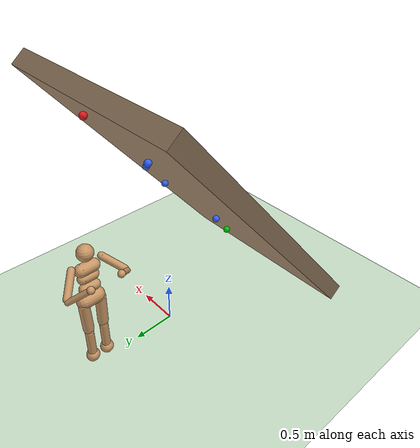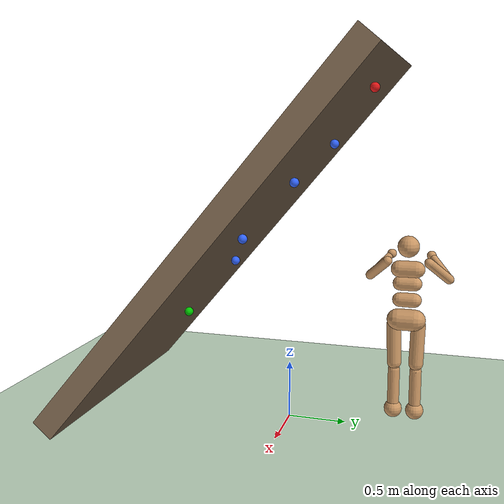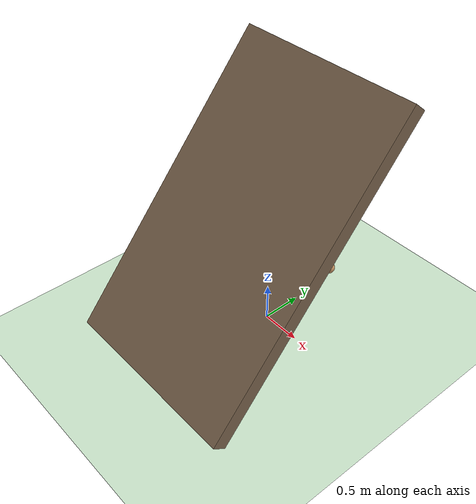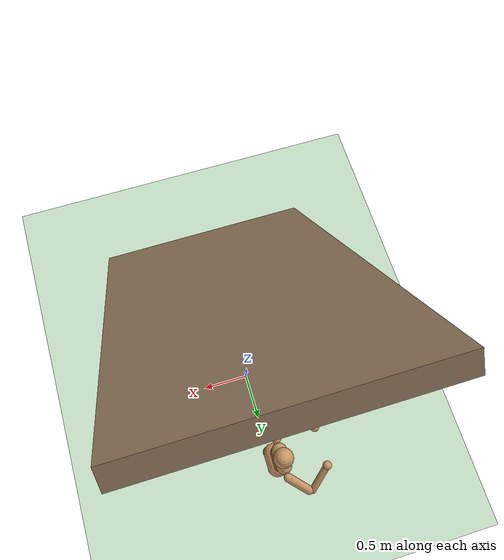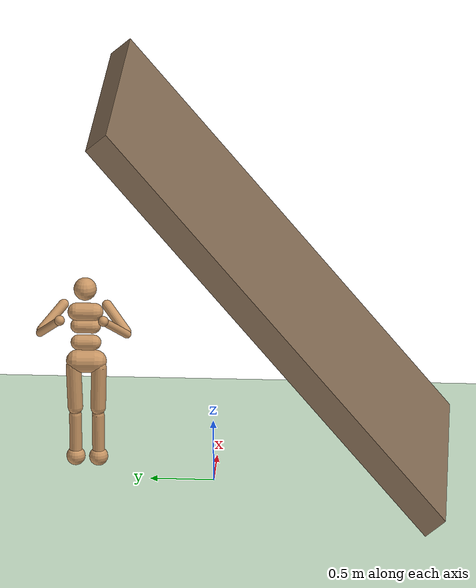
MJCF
<mujoco model="moonboard_scene">
  <compiler angle="degree" inertiafromgeom="true" />
  <option integrator="RK4" iterations="50" solver="PGS" timestep="0.003">

    </option>
  <size nkey="5" nuser_geom="1" />
  <visual>
    <map fogend="5" fogstart="3" />
  </visual>
  <default>
    <joint armature="1" damping="1" limited="true" />
    <geom conaffinity="1" condim="1" contype="1" margin="0.001" material="geom" rgba="0.8 0.6 .4 1" />
    <motor ctrllimited="true" ctrlrange="-.4 .4" />
  </default>
  <asset>
    <texture builtin="gradient" height="100" rgb1=".4 .5 .6" rgb2="0 0 0" type="skybox" width="100" />
    <texture builtin="flat" height="1278" mark="cross" markrgb="1 1 1" name="texgeom" random="0.01" rgb1="0.8 0.6 0.4" rgb2="0.8 0.6 0.4" type="cube" width="127" />
    <texture builtin="checker" height="100" name="texplane" rgb1="0 0 0" rgb2="0.8 0.8 0.8" type="2d" width="100" />
    <material name="MatPlane" reflectance="0.5" shininess="1" specular="1" texrepeat="60 60" texture="texplane" />
    <material name="geom" texture="texgeom" texuniform="true" />
  </asset>
  <worldbody>
    <light name="main_light" diffuse=".9 .9 .9" pos="0 -1 5" dir="0 0.2 -1" directional="true" />
    <geom name="floor" type="plane" condim="3" friction="1 .1 .1" material="MatPlane" pos="0 0 0" size="20 20 0.125" rgba="0.8 0.9 0.8 1" />
    <geom name="moonboard_wall" type="box" pos="0.0000 -0.4839 1.6666" euler="-40.0 0 0" size="1.2 0.1 2.0" rgba="0.55 0.45 0.35 1" contype="1" conaffinity="1" />
    <body name="hold_20153_h001" pos="0.0000 -0.9551 0.8871">
      <geom type="sphere" size="0.04" rgba="0 0.8 0 1" contype="0" conaffinity="0" name="geom_20153_h001" />
    </body>
    <body name="hold_20153_h002" pos="-0.2000 -0.5695 1.3468">
      <geom type="sphere" size="0.04" rgba="0.2 0.4 1 1" contype="0" conaffinity="0" name="geom_20153_h002" />
    </body>
    <body name="hold_20153_h003" pos="0.4000 -0.3123 1.6532">
      <geom type="sphere" size="0.04" rgba="0.2 0.4 1 1" contype="0" conaffinity="0" name="geom_20153_h003" />
    </body>
    <body name="hold_20153_h004" pos="0.2000 0.0733 2.1128">
      <geom type="sphere" size="0.04" rgba="0.2 0.4 1 1" contype="0" conaffinity="0" name="geom_20153_h004" />
    </body>
    <body name="hold_20153_h005" pos="-0.2000 0.3304 2.4192">
      <geom type="sphere" size="0.04" rgba="0.2 0.4 1 1" contype="0" conaffinity="0" name="geom_20153_h005" />
    </body>
    <body name="hold_20153_h006" pos="0.2000 0.7161 2.8788">
      <geom type="sphere" size="0.04" rgba="0.9 0.1 0.1 1" contype="0" conaffinity="0" name="geom_20153_h006" />
    </body>
    <body name="torso" pos="0 1.0 1.4" euler="0 0 180">
      <camera name="track" mode="trackcom" pos="0 -4 0" xyaxes="1 0 0 0 0 1" />
      <joint armature="0" damping="0" limited="false" name="root" pos="0 0 0" stiffness="0" type="free" />
      <geom fromto="0 -.07 0 0 .07 0" name="torso1" size="0.07" type="capsule" />
      <geom name="head" pos="0 0 .19" size=".09" type="sphere" user="258" />
      <geom fromto="-.01 -.06 -.12 -.01 .06 -.12" name="uwaist" size="0.06" type="capsule" />
      <body name="lwaist" pos="-.01 0 -0.260" quat="1.000 0 -0.002 0">
        <geom fromto="0 -.06 0 0 .06 0" name="lwaist" size="0.06" type="capsule" />
        <joint armature="0.02" axis="0 0 1" damping="5" name="abdomen_z" pos="0 0 0.065" range="-45 45" stiffness="20" type="hinge" />
        <joint armature="0.02" axis="0 1 0" damping="5" name="abdomen_y" pos="0 0 0.065" range="-75 30" stiffness="10" type="hinge" />
        <body name="pelvis" pos="0 0 -0.165" quat="1.000 0 -0.002 0">
          <joint armature="0.02" axis="1 0 0" damping="5" name="abdomen_x" pos="0 0 0.1" range="-35 35" stiffness="10" type="hinge" />
          <geom fromto="-.02 -.07 0 -.02 .07 0" name="butt" size="0.09" type="capsule" />
          <body name="right_thigh" pos="0 -0.1 -0.04">
            <joint armature="0.01" axis="1 0 0" damping="5" name="right_hip_x" pos="0 0 0" range="-25 5" stiffness="10" type="hinge" />
            <joint armature="0.01" axis="0 0 1" damping="5" name="right_hip_z" pos="0 0 0" range="-60 35" stiffness="10" type="hinge" />
            <joint armature="0.0080" axis="0 1 0" damping="5" name="right_hip_y" pos="0 0 0" range="-110 20" stiffness="20" type="hinge" />
            <geom fromto="0 0 0 0 0.01 -.34" name="right_thigh1" size="0.06" type="capsule" />
            <body name="right_shin" pos="0 0.01 -0.403">
              <joint armature="0.0060" axis="0 -1 0" name="right_knee" pos="0 0 .02" range="-160 -2" type="hinge" />
              <geom fromto="0 0 0 0 0 -.3" name="right_shin1" size="0.049" type="capsule" />
              <body name="right_foot" pos="0 0 -0.45">
                <geom name="right_foot" pos="0 0 0.1" size="0.075" type="sphere" user="0" />
              </body>
            </body>
          </body>
          <body name="left_thigh" pos="0 0.1 -0.04">
            <joint armature="0.01" axis="-1 0 0" damping="5" name="left_hip_x" pos="0 0 0" range="-25 5" stiffness="10" type="hinge" />
            <joint armature="0.01" axis="0 0 -1" damping="5" name="left_hip_z" pos="0 0 0" range="-60 35" stiffness="10" type="hinge" />
            <joint armature="0.01" axis="0 1 0" damping="5" name="left_hip_y" pos="0 0 0" range="-110 20" stiffness="20" type="hinge" />
            <geom fromto="0 0 0 0 -0.01 -.34" name="left_thigh1" size="0.06" type="capsule" />
            <body name="left_shin" pos="0 -0.01 -0.403">
              <joint armature="0.0060" axis="0 -1 0" name="left_knee" pos="0 0 .02" range="-160 -2" stiffness="1" type="hinge" />
              <geom fromto="0 0 0 0 0 -.3" name="left_shin1" size="0.049" type="capsule" />
              <body name="left_foot" pos="0 0 -0.45">
                <geom name="left_foot" type="sphere" size="0.075" pos="0 0 0.1" user="0" />
              </body>
            </body>
          </body>
        </body>
      </body>
      <body name="right_upper_arm" pos="0 -0.17 0.06">
        <joint armature="0.0068" axis="2 1 1" name="right_shoulder1" pos="0 0 0" range="-85 60" stiffness="1" type="hinge" />
        <joint armature="0.0051" axis="0 -1 1" name="right_shoulder2" pos="0 0 0" range="-85 60" stiffness="1" type="hinge" />
        <geom fromto="0 0 0 .16 -.16 -.16" name="right_uarm1" size="0.04 0.16" type="capsule" />
        <body name="right_lower_arm" pos=".18 -.18 -.18">
          <joint armature="0.0028" axis="0 -1 1" name="right_elbow" pos="0 0 0" range="-90 50" stiffness="0" type="hinge" />
          <geom fromto="0.01 0.01 0.01 .17 .17 .17" name="right_larm" size="0.031" type="capsule" />
          <geom name="right_hand" pos=".18 .18 .18" size="0.04" type="sphere" />
          <camera pos="0 0 0" />
        </body>
      </body>
      <body name="left_upper_arm" pos="0 0.17 0.06">
        <joint armature="0.0068" axis="2 -1 1" name="left_shoulder1" pos="0 0 0" range="-60 85" stiffness="1" type="hinge" />
        <joint armature="0.0051" axis="0 1 1" name="left_shoulder2" pos="0 0 0" range="-60 85" stiffness="1" type="hinge" />
        <geom fromto="0 0 0 .16 .16 -.16" name="left_uarm1" size="0.04 0.16" type="capsule" />
        <body name="left_lower_arm" pos=".18 .18 -.18">
          <joint armature="0.0028" axis="0 -1 -1" name="left_elbow" pos="0 0 0" range="-90 50" stiffness="0" type="hinge" />
          <geom fromto="0.01 -0.01 0.01 .17 -.17 .17" name="left_larm" size="0.031" type="capsule" />
          <geom name="left_hand" pos=".18 -.18 .18" size="0.04" type="sphere" />
        </body>
      </body>
    </body>
  </worldbody>
  <actuator>
    <motor gear="100" joint="abdomen_y" name="abdomen_y" />
    <motor gear="100" joint="abdomen_z" name="abdomen_z" />
    <motor gear="100" joint="abdomen_x" name="abdomen_x" />
    <motor gear="100" joint="right_hip_x" name="right_hip_x" />
    <motor gear="100" joint="right_hip_z" name="right_hip_z" />
    <motor gear="300" joint="right_hip_y" name="right_hip_y" />
    <motor gear="200" joint="right_knee" name="right_knee" />
    <motor gear="100" joint="left_hip_x" name="left_hip_x" />
    <motor gear="100" joint="left_hip_z" name="left_hip_z" />
    <motor gear="300" joint="left_hip_y" name="left_hip_y" />
    <motor gear="200" joint="left_knee" name="left_knee" />
    <motor gear="25" joint="right_shoulder1" name="right_shoulder1" />
    <motor gear="25" joint="right_shoulder2" name="right_shoulder2" />
    <motor gear="25" joint="right_elbow" name="right_elbow" />
    <motor gear="25" joint="left_shoulder1" name="left_shoulder1" />
    <motor gear="25" joint="left_shoulder2" name="left_shoulder2" />
    <motor gear="25" joint="left_elbow" name="left_elbow" />
  </actuator>
</mujoco>
